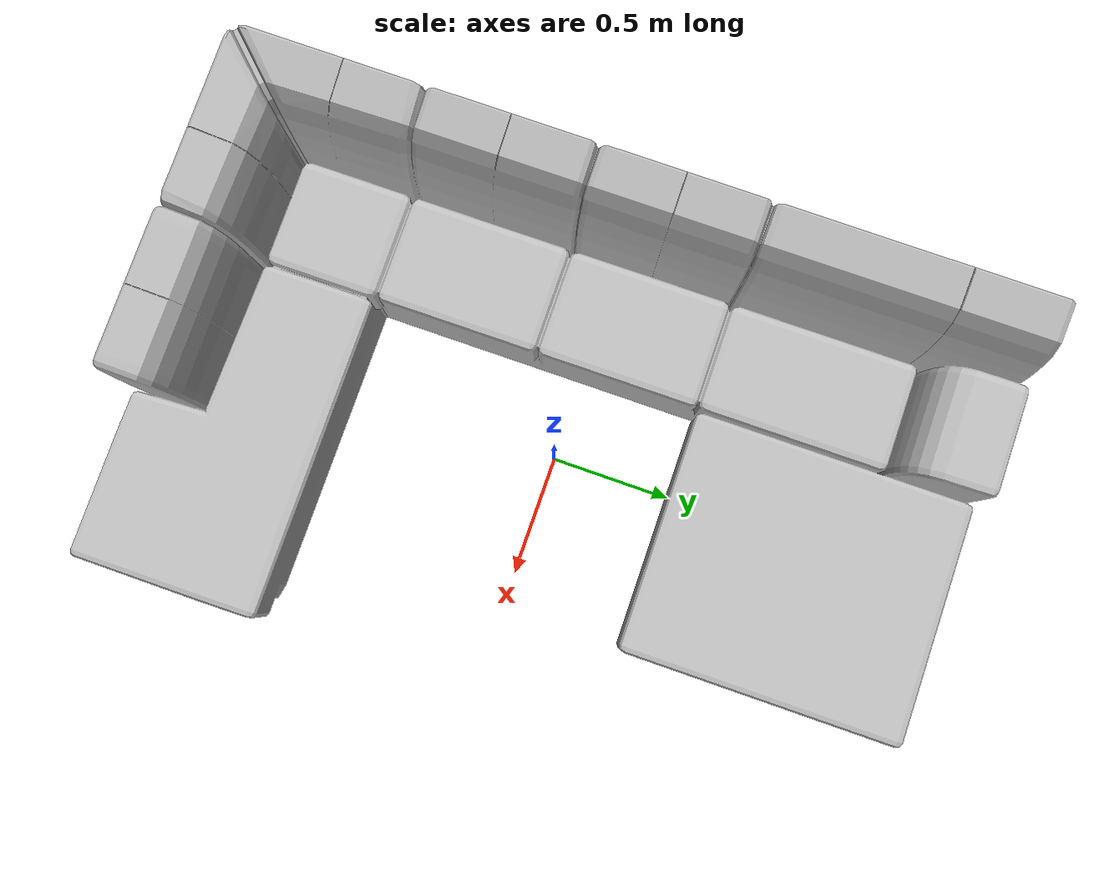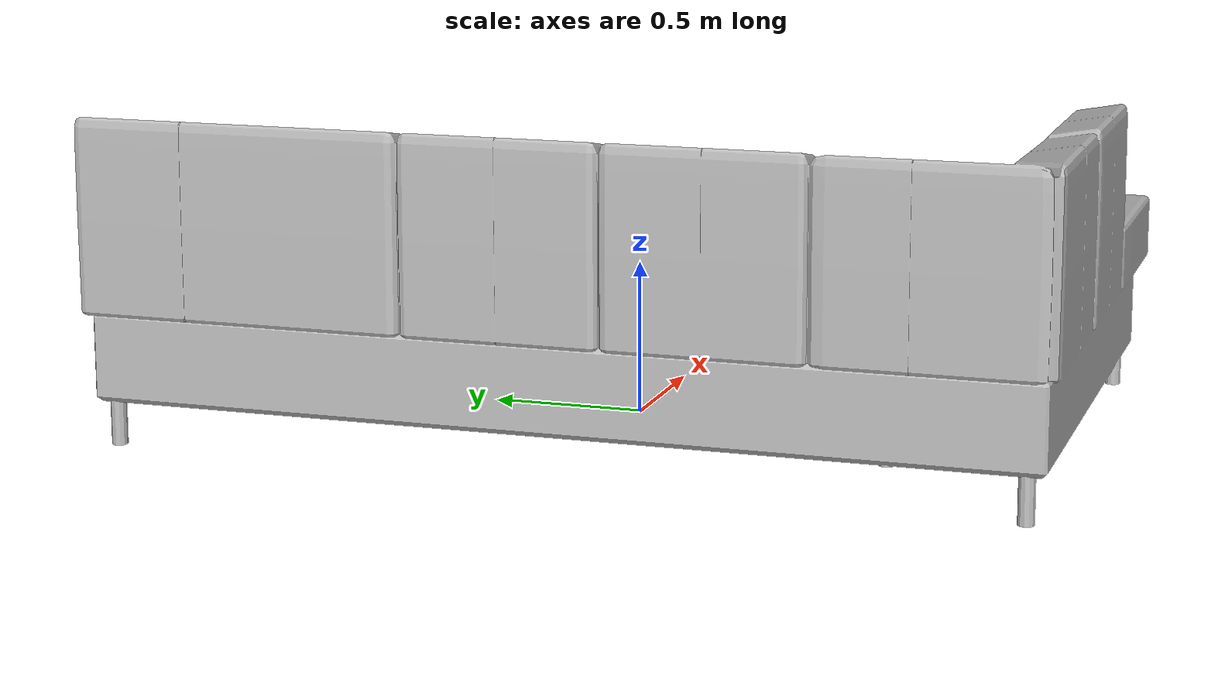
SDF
<?xml version='1.0'?>
<sdf version='1.4'>
  <model name='167'>
    <pose>0 0 0 0 0 0</pose>
    <static>true</static>
    <link name='link'>
      <collision name='collision'>
        <pose>0 0 0 0 0 0</pose>
        <geometry>
          <box>
            <size>1.93296 3.03706 2</size>
          </box>
        </geometry>
      </collision>
      <visual name='visual'>
        <pose>0 0 0 0 0 0</pose>
        <geometry>
          <mesh><uri>model://167/167.dae</uri></mesh>
        </geometry>
      </visual>
    </link>
  </model>
</sdf>
